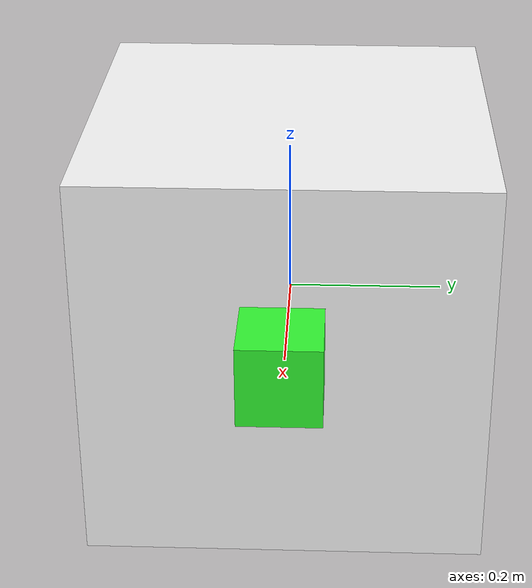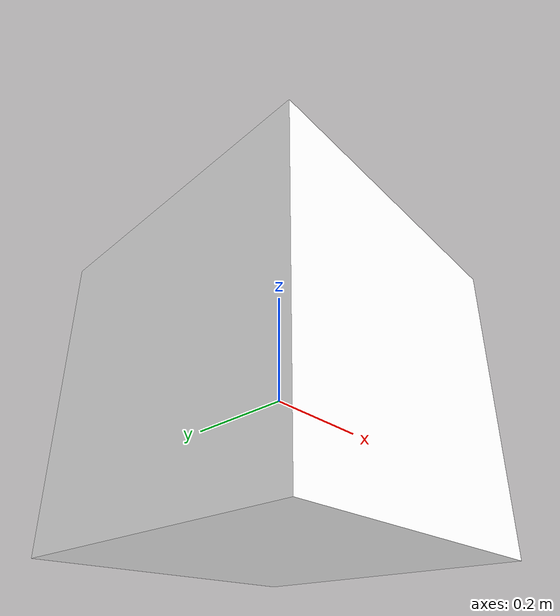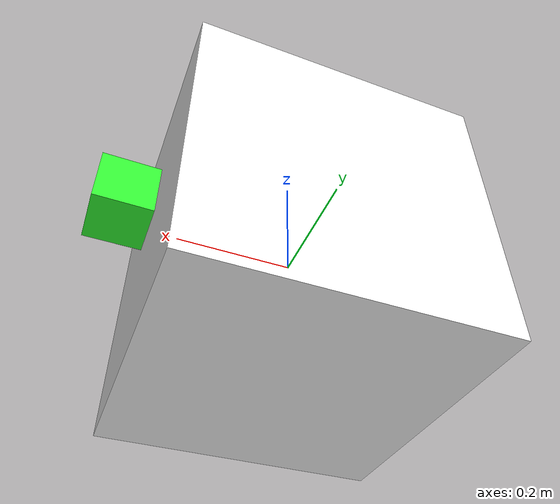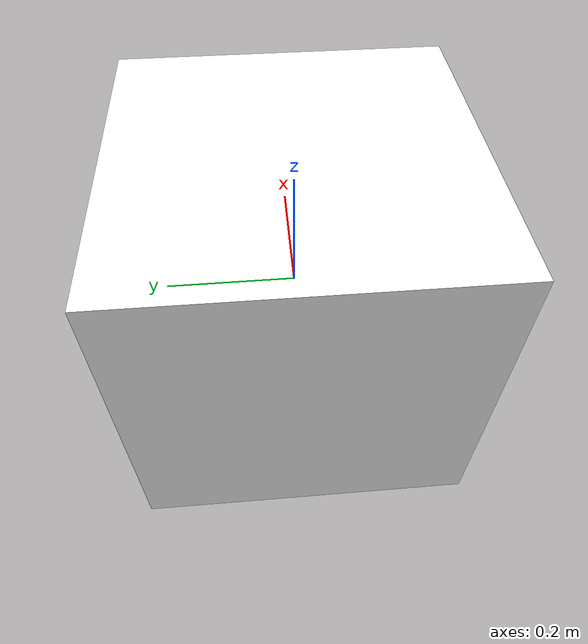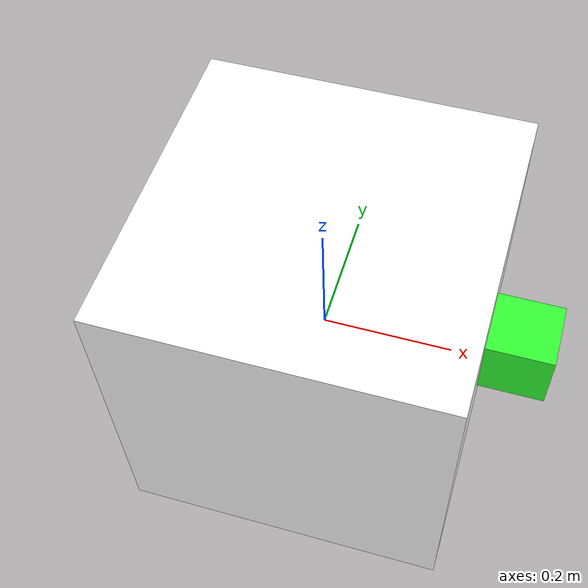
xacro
<?xml version="1.0"?>
<robot xmlns:xacro="http://www.ros.org/wiki/xacro"  name="robot">
  <link name="world"/>

  <joint name="body" type="fixed">
    <parent link="world" />
    <child link="body_link" />
    <origin xyz="0 0 0" rpy="0 0 0" />
  </joint>

  <link name="body_link">
    <visual>
          <origin xyz="0 0 0" rpy="0 0 0"/>
          <geometry>
              <box size="0.5 0.5 0.5" />
          </geometry>
          <material name="green">
              <color rgba="1 1 1 1"/>
          </material>
      </visual>
      <collision>
          <origin xyz="0 0 0" rpy="0 0 0"/>
          <geometry>
              <box size="0.5 0.5 0.5" />
          </geometry>
      </collision>
      <inertial>
          <origin xyz="0 0 0.05" rpy="0 0 0"/>
          <mass value="12" />
          <inertia ixx="2.26" ixy="0.0" ixz="0.0" iyy="6.26" iyz="0.0" izz="8.5" />
      </inertial>
  </link>

    <xacro:include filename="camera.xacro" />
    <xacro:include filename="gazebo.xacro" />
  </robot>

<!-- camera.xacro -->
<robot xmlns:xacro="http://www.ros.org/wiki/xacro" >

  <joint name="camera_joint" type="fixed">
    <parent link="body_link" />
    <child link="camera_link" />
    <origin xyz="0.3 0 0.05" rpy="0 0 0" />
  </joint>

  <link name="camera_link">
    <visual>
          <origin xyz="0 0 0" rpy="0 0 0"/>
          <geometry>
              <box size="0.1 0.1 0.1" />
          </geometry>
          <material name="green">
              <color rgba="0.2 1 0.2 1"/>
          </material>
      </visual>
      <collision>
          <origin xyz="0 0 0" rpy="0 0 0"/>
          <geometry>
              <box size="0.1 0.1 0.1" />
          </geometry>
      </collision>
      <inertial>
          <origin xyz="0 0 0" rpy="0 0 0"/>
          <mass value="12" />
          <inertia ixx="2.26" ixy="0.0" ixz="0.0" iyy="6.26" iyz="0.0" izz="8.5" />
      </inertial>
  </link>

  <joint name="camera_optical_joint" type="fixed">
    <parent link="camera_link" />
    <child link="camera_link_optical" />
    <origin xyz="0 0 0" rpy="-1.571 0 -1.571" />
  </joint>

  <link name="camera_link_optical"> </link>

</robot>
